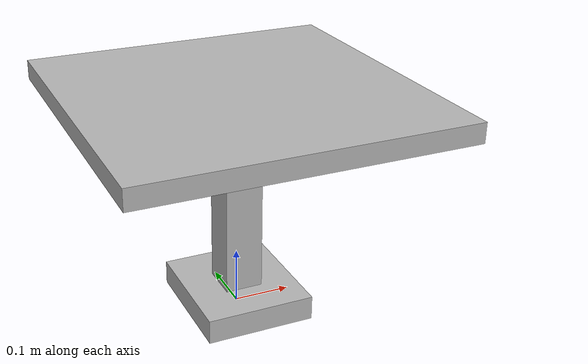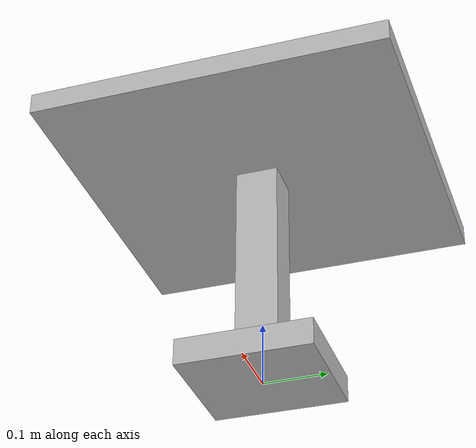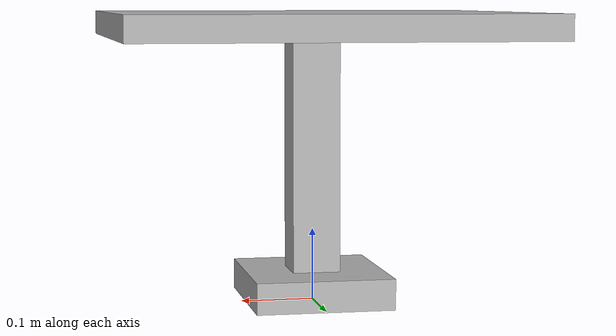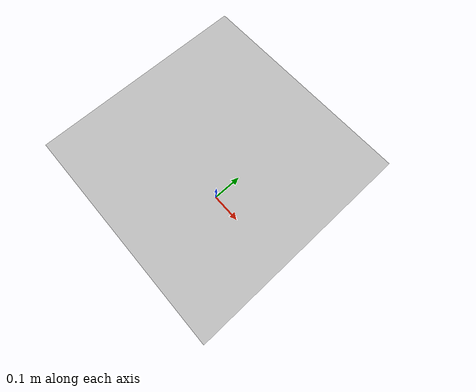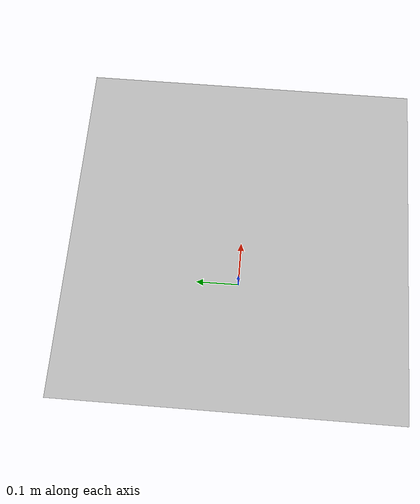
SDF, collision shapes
<?xml version="1.0" ?>
<sdf version="1.6">
  <model name="aws_robomaker_residential_BalconyTable_01">
    <link name="link">
      <inertial>
        <mass>15</mass>
      </inertial>
      <collision name="aws_balconytable_01_collision_collider_box">
        <pose>0.000851 -0.001887 0.385485 0.0 -0.0 0.0</pose>
        <geometry>
          <box>
            <size>0.56283 0.563226 0.034709</size>
          </box>
        </geometry>
      </collision>
      <collision name="aws_balconytable_01_collision_collider_box.001">
        <pose>0.000289 -0.000715 0.021397 0.0 -0.0 0.0</pose>
        <geometry>
          <box>
            <size>0.190722 0.213353 0.042794</size>
          </box>
        </geometry>
      </collision>
      <collision name="aws_balconytable_01_collision_collider_box.002">
        <pose>0.0001 -0.000228 0.200765 0.0 -0.0 0.0</pose>
        <geometry>
          <box>
            <size>0.06594 0.067935 0.34622</size>
          </box>
        </geometry>
      </collision>
      <visual name="visual">
	    <geometry>
          <mesh>
            <uri>model://aws_robomaker_residential_BalconyTable_01/meshes/aws_BalconyTable_01_visual.DAE</uri>
          </mesh>
        </geometry>
      <meta> <layer> 1 </layer></meta>
</visual>
    </link>
  </model>
</sdf>
